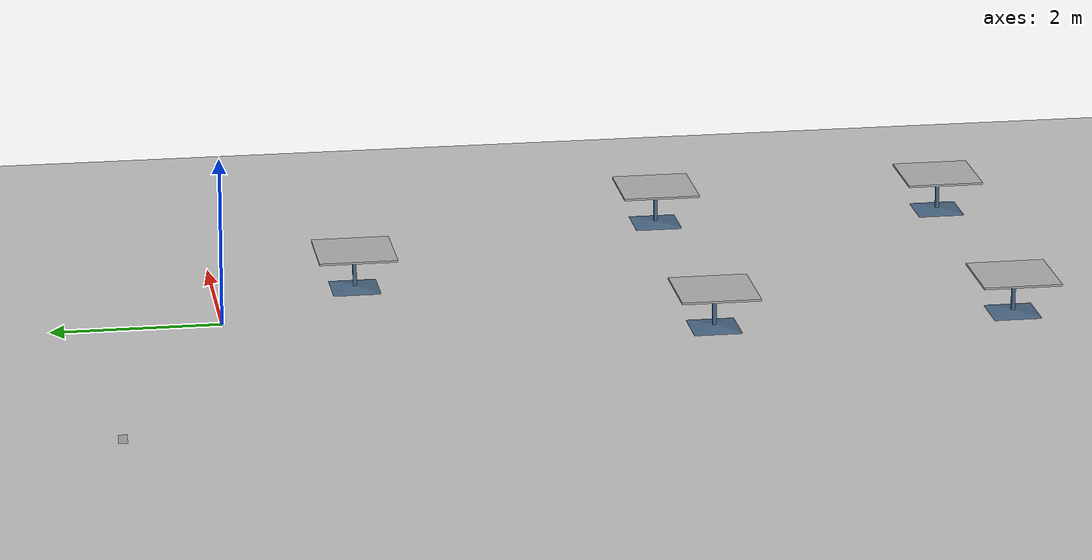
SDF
<sdf version="1.6">
 <world name="default">
  <physics name="1ms" type="ignored">
   <max_step_size>0.001</max_step_size>
   <real_time_factor>1.0</real_time_factor>
  </physics>
  <plugin filename="gz-sim-physics-system" name="gz::sim::systems::Physics"/>
  <plugin filename="gz-sim-user-commands-system" name="gz::sim::systems::UserCommands"/>
  <plugin filename="gz-sim-scene-broadcaster-system" name="gz::sim::systems::SceneBroadcaster"/>
  <plugin filename="gz-sim-sensors-system" name="gz::sim::systems::Sensors">
   <render_engine>ogre2</render_engine>
  </plugin>
  <plugin filename="gz-sim-contact-system" name="gz::sim::systems::Contact"/>
  <light type="directional" name="sun">
   <pose>0 0 10 0 0 0</pose>
   <diffuse>1 1 1 1</diffuse>
   <specular>0.5 0.5 0.5 1</specular>
   <attenuation>
    <range>1000</range>
    <constant>0.9</constant>
    <linear>0.01</linear>
    <quadratic>0.001</quadratic>
   </attenuation>
   <direction>-0.5 0.1 -0.9</direction>
  </light>
  <model name="ground_plane">
   <static>true</static>
   <link name="link">
    <collision name="collision">
     <geometry><plane><normal>0 0 1</normal><size>100 100</size></plane></geometry>
     <surface><friction><ode><mu>0.0</mu><mu2>0.0</mu2></ode></friction></surface>
    </collision>
    <visual name="visual">
     <geometry><plane><normal>0 0 1</normal><size>100 100</size></plane></geometry>
     <material>
      <ambient>0.8 0.8 0.8 1</ambient>
      <diffuse>0.8 0.8 0.8 1</diffuse>
      <specular>0.8 0.8 0.8 1</specular>
     </material>
    </visual>
   </link>
  </model>
  <include><name>table1</name><pose>0.5 -1.6 0.2 0 0 0</pose><uri>model://cafe_table</uri></include>
  <include><name>table2</name><pose>2.4 -5.5 0.2 0 0 0</pose><uri>model://cafe_table</uri></include>
  <include><name>table3</name><pose>-1.5 -5.5 0.2 0 0 0</pose><uri>model://cafe_table</uri></include>
  <include><name>table4</name><pose>2.4 -9 0.2 0 0 0</pose><uri>model://cafe_table</uri></include>
  <include><name>table5</name><pose>-1.5 -9 0.2 0 0 0</pose><uri>model://cafe_table</uri></include>
  <include>
   <name>Apriltag36_11_00000</name>
   <pose>-4.96 1.5 0.5 1.5708 0 1.5708</pose>
   <static>true</static>
   <uri>model://Apriltag36_11_00000</uri>
  </include>
 </world>
</sdf>

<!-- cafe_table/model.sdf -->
<sdf version="1.5">
  <model name="cafe_table">
    <static>true</static>
    <link name="link">
      <collision name="surface">
        <pose>0 0 0.45 0 0 0</pose>
        <geometry>
          <box>
            <size>0.913 0.913 0.035</size>
          </box>
        </geometry>
      </collision>

      <collision name="column">
        <pose>0 0 0.37 0 0 0</pose>
        <geometry>
          <box>
            <size>0.042 0.042 0.15</size>
          </box>
        </geometry>
      </collision>

      <collision name="base">
        <pose>0 0 0.02 0 0 0</pose>
        <geometry>
          <box>
            <size>0.56 0.56 0.04</size>
          </box>
        </geometry>
      </collision>

      <visual name="visual">
        <geometry>
          <mesh>
            <scale>1 1 0.6</scale>
            <uri>file://isr-testbed/cafe_table/meshes/cafe_table.dae</uri>
          </mesh>
        </geometry>
      </visual>
    </link>
  </model>
</sdf>

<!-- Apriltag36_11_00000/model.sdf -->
<sdf version='1.6'>
  <model name='Apriltag36_11_00000'>
    <link name="link">
      <inertial>
        <pose>0 0 0 0 0 0</pose>
        <mass>0.5</mass>
        <inertia>
          <ixx>0.0001</ixx>
          <ixy>0</ixy>
          <ixz>0</ixz>
          <iyy>0.0001</iyy>
          <iyz>0</iyz>
          <izz>0.0001</izz>
        </inertia>
      </inertial>
      <collision name="collision">
        <pose>0 0 0 0 0 0</pose>
        <geometry>
          <mesh>
            <uri>model://Apriltag36_11_00000/meshes/tag36_11_00000.dae</uri>
          </mesh>
        </geometry>
        <surface>
          <friction>
            <ode>
              <mu>1.0</mu>
              <mu2>1.0</mu2>
            </ode>
          </friction>
          <contact>
            <ode>
              <kp>10000000.0</kp>
              <kd>1.0</kd>
              <min_depth>0.001</min_depth>
              <max_vel>0.1</max_vel>
            </ode>
          </contact>
        </surface>
      </collision>
      <visual name="visual">
        <pose>0 0 0 0 0 0</pose>
        <geometry>
          <mesh>
            <uri>model://Apriltag36_11_00000/meshes/tag36_11_00000.dae</uri>
          </mesh>
        </geometry>
      </visual>
    </link>
  </model>
</sdf>
